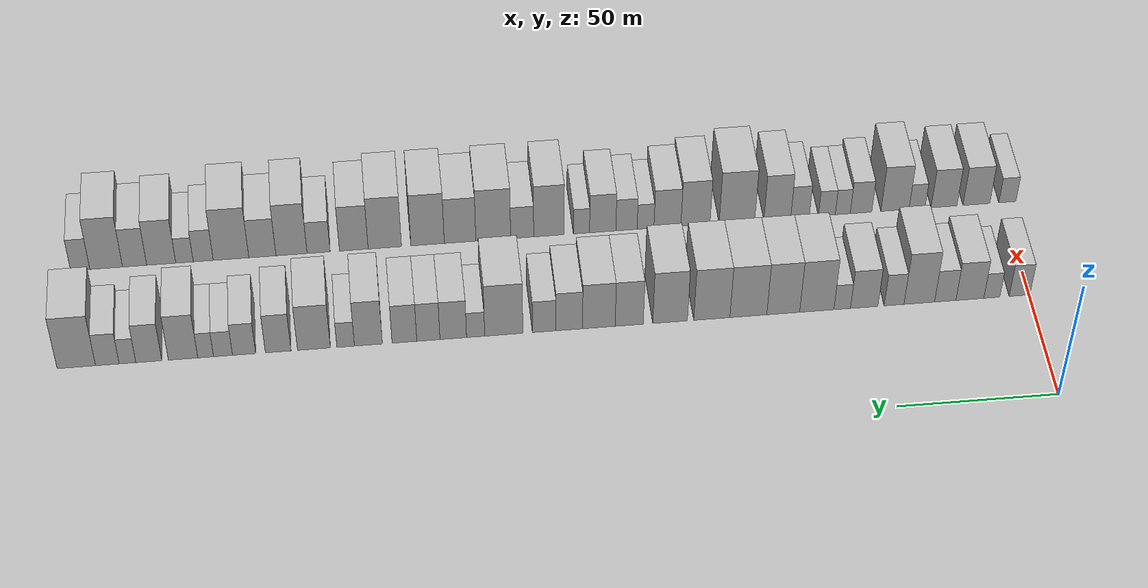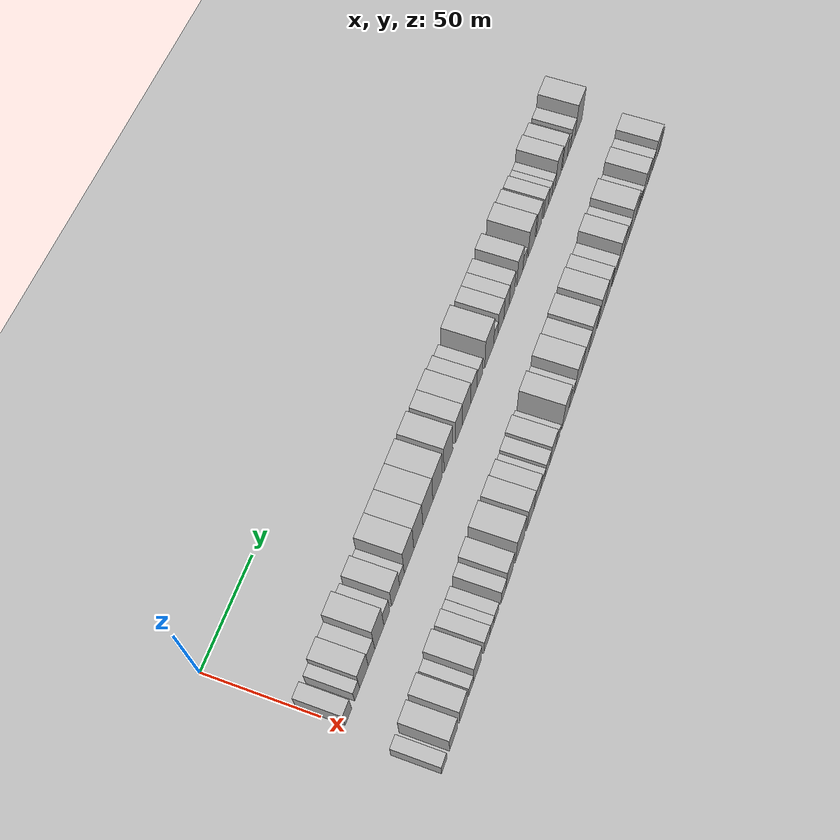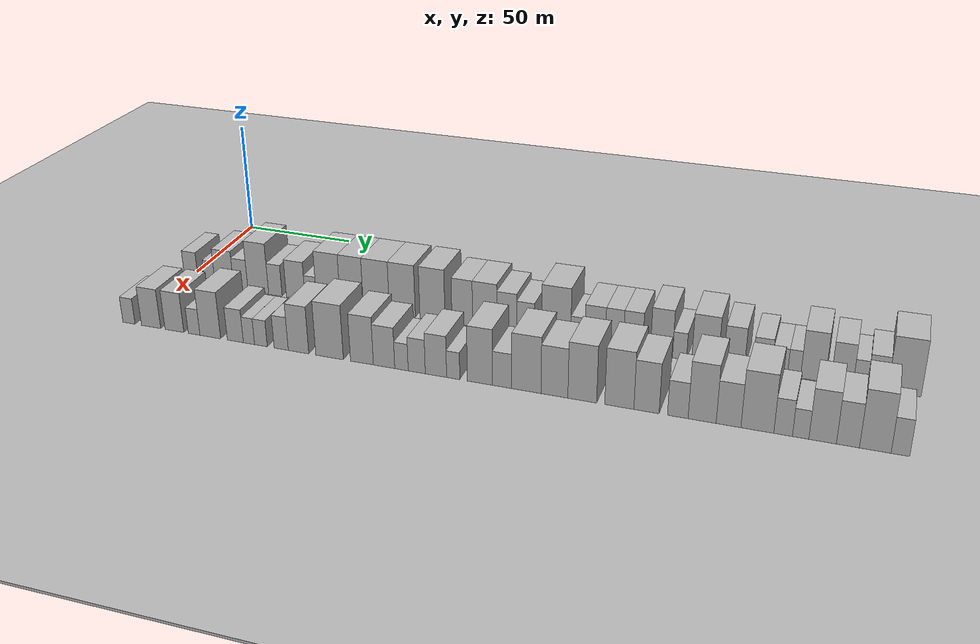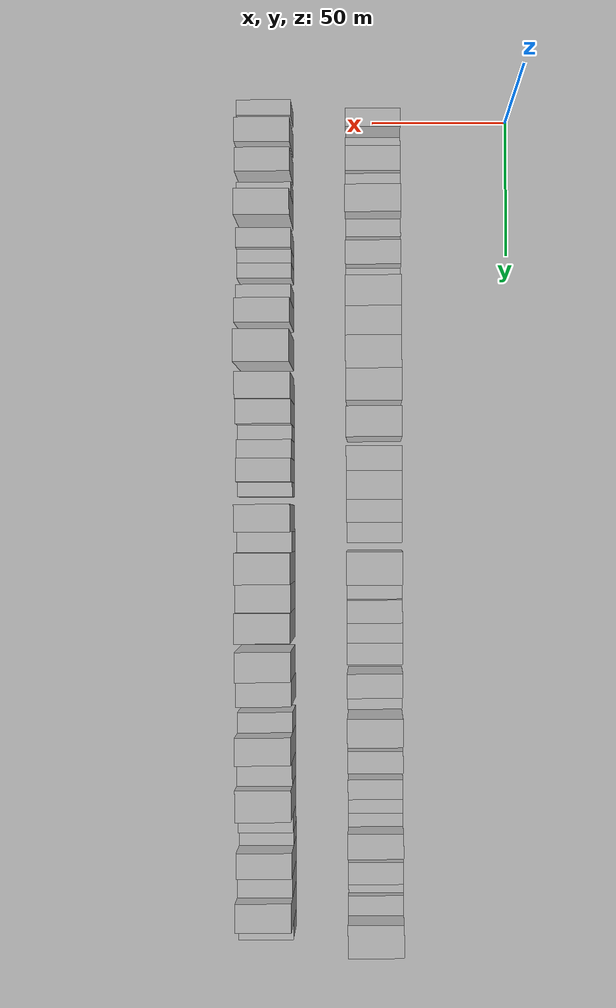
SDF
<sdf version="1.6">
 <world name="default">
  <include><name>ground_plane_1</name><uri>model://HANNAS_ground_plane</uri></include>
  <include>
   <name>ground_plane_2</name>
   <uri>model://HANNAS_ground_plane</uri>
   <pose>100 0 0  0 0 0</pose>
  </include>
  <model name="building_35">
   <static>1</static>
   <pose>50.0000 3.3389 0 0.000000 0.000000 0.000000</pose>
   <link name="link">
    <pose>0 0 7.50 0 0 0</pose>
    <collision name="collision"><geometry><box><size>20.0000 6.6458 15.0000</size></box></geometry></collision>
    <visual name="visual">
     <cast_shadows>0</cast_shadows>
     <geometry><box><size>20.0000 6.6458 15.0000</size></box></geometry>
     <material>
      <script>
       <uri>model://HANNAS_wall/materials/scripts</uri>
       <uri>model://HANNAS_wall/materials/textures</uri>
       <name>vrc/HANNAS_wall</name>
      </script>
     </material>
    </visual>
   </link>
  </model>
  <model name="building_36">
   <static>1</static>
   <pose>50.0000 12.2295 0 0.000000 0.000000 0.000000</pose>
   <link name="link">
    <pose>0 0 6.00 0 0 0</pose>
    <collision name="collision"><geometry><box><size>20.0000 5.1353 12.0000</size></box></geometry></collision>
    <visual name="visual">
     <cast_shadows>0</cast_shadows>
     <geometry><box><size>20.0000 5.1353 12.0000</size></box></geometry>
     <material>
      <script>
       <uri>model://HANNAS_wall/materials/scripts</uri>
       <uri>model://HANNAS_wall/materials/textures</uri>
       <name>vrc/HANNAS_wall</name>
      </script>
     </material>
    </visual>
   </link>
  </model>
  <model name="building_37">
   <static>1</static>
   <pose>50.0000 19.2701 0 0.000000 0.000000 0.000000</pose>
   <link name="link">
    <pose>0 0 9.00 0 0 0</pose>
    <collision name="collision"><geometry><box><size>20.0000 8.9459 18.0000</size></box></geometry></collision>
    <visual name="visual">
     <cast_shadows>0</cast_shadows>
     <geometry><box><size>20.0000 8.9459 18.0000</size></box></geometry>
     <material>
      <script>
       <uri>model://HANNAS_wall/materials/scripts</uri>
       <uri>model://HANNAS_wall/materials/textures</uri>
       <name>vrc/HANNAS_wall</name>
      </script>
     </material>
    </visual>
   </link>
  </model>
  <model name="building_38">
   <static>1</static>
   <pose>50.0000 27.1577 0 0.000000 0.000000 0.000000</pose>
   <link name="link">
    <pose>0 0 7.50 0 0 0</pose>
    <collision name="collision"><geometry><box><size>20.0000 6.8295 15.0000</size></box></geometry></collision>
    <visual name="visual">
     <cast_shadows>0</cast_shadows>
     <geometry><box><size>20.0000 6.8295 15.0000</size></box></geometry>
     <material>
      <script>
       <uri>model://HANNAS_wall/materials/scripts</uri>
       <uri>model://HANNAS_wall/materials/textures</uri>
       <name>vrc/HANNAS_wall</name>
      </script>
     </material>
    </visual>
   </link>
  </model>
  <model name="building_39">
   <static>1</static>
   <pose>50.0000 35.4678 0 0.000000 0.000000 0.000000</pose>
   <link name="link">
    <pose>0 0 12.00 0 0 0</pose>
    <collision name="collision"><geometry><box><size>20.0000 9.7906 24.0000</size></box></geometry></collision>
    <visual name="visual">
     <cast_shadows>0</cast_shadows>
     <geometry><box><size>20.0000 9.7906 24.0000</size></box></geometry>
     <material>
      <script>
       <uri>model://HANNAS_wall/materials/scripts</uri>
       <uri>model://HANNAS_wall/materials/textures</uri>
       <name>vrc/HANNAS_wall</name>
      </script>
     </material>
    </visual>
   </link>
  </model>
  <model name="building_40">
   <static>1</static>
   <pose>50.0000 43.5273 0 0.000000 0.000000 0.000000</pose>
   <link name="link">
    <pose>0 0 7.50 0 0 0</pose>
    <collision name="collision"><geometry><box><size>20.0000 6.3284 15.0000</size></box></geometry></collision>
    <visual name="visual">
     <cast_shadows>0</cast_shadows>
     <geometry><box><size>20.0000 6.3284 15.0000</size></box></geometry>
     <material>
      <script>
       <uri>model://HANNAS_wall/materials/scripts</uri>
       <uri>model://HANNAS_wall/materials/textures</uri>
       <name>vrc/HANNAS_wall</name>
      </script>
     </material>
    </visual>
   </link>
  </model>
  <model name="building_41">
   <static>1</static>
   <pose>50.0000 53.0629 0 0.000000 0.000000 0.000000</pose>
   <link name="link">
    <pose>0 0 9.00 0 0 0</pose>
    <collision name="collision"><geometry><box><size>20.0000 8.7427 18.0000</size></box></geometry></collision>
    <visual name="visual">
     <cast_shadows>0</cast_shadows>
     <geometry><box><size>20.0000 8.7427 18.0000</size></box></geometry>
     <material>
      <script>
       <uri>model://HANNAS_wall/materials/scripts</uri>
       <uri>model://HANNAS_wall/materials/textures</uri>
       <name>vrc/HANNAS_wall</name>
      </script>
     </material>
    </visual>
   </link>
  </model>
  <model name="building_42">
   <static>1</static>
   <pose>50.0000 60.0749 0 0.000000 0.000000 0.000000</pose>
   <link name="link">
    <pose>0 0 6.00 0 0 0</pose>
    <collision name="collision"><geometry><box><size>20.0000 5.2812 12.0000</size></box></geometry></collision>
    <visual name="visual">
     <cast_shadows>0</cast_shadows>
     <geometry><box><size>20.0000 5.2812 12.0000</size></box></geometry>
     <material>
      <script>
       <uri>model://HANNAS_wall/materials/scripts</uri>
       <uri>model://HANNAS_wall/materials/textures</uri>
       <name>vrc/HANNAS_wall</name>
      </script>
     </material>
    </visual>
   </link>
  </model>
  <model name="building_43">
   <static>1</static>
   <pose>50.0000 68.1646 0 0.000000 0.000000 0.000000</pose>
   <link name="link">
    <pose>0 0 12.00 0 0 0</pose>
    <collision name="collision"><geometry><box><size>20.0000 10.8982 24.0000</size></box></geometry></collision>
    <visual name="visual">
     <cast_shadows>0</cast_shadows>
     <geometry><box><size>20.0000 10.8982 24.0000</size></box></geometry>
     <material>
      <script>
       <uri>model://HANNAS_wall/materials/scripts</uri>
       <uri>model://HANNAS_wall/materials/textures</uri>
       <name>vrc/HANNAS_wall</name>
      </script>
     </material>
    </visual>
   </link>
  </model>
  <model name="building_44">
   <static>1</static>
   <pose>50.0000 78.8283 0 0.000000 0.000000 0.000000</pose>
   <link name="link">
    <pose>0 0 12.00 0 0 0</pose>
    <collision name="collision"><geometry><box><size>20.0000 10.4291 24.0000</size></box></geometry></collision>
    <visual name="visual">
     <cast_shadows>0</cast_shadows>
     <geometry><box><size>20.0000 10.4291 24.0000</size></box></geometry>
     <material>
      <script>
       <uri>model://HANNAS_wall/materials/scripts</uri>
       <uri>model://HANNAS_wall/materials/textures</uri>
       <name>vrc/HANNAS_wall</name>
      </script>
     </material>
    </visual>
   </link>
  </model>
  <model name="building_45">
   <static>1</static>
   <pose>50.0000 89.8818 0 0.000000 0.000000 0.000000</pose>
   <link name="link">
    <pose>0 0 12.00 0 0 0</pose>
    <collision name="collision"><geometry><box><size>20.0000 11.6781 24.0000</size></box></geometry></collision>
    <visual name="visual">
     <cast_shadows>0</cast_shadows>
     <geometry><box><size>20.0000 11.6781 24.0000</size></box></geometry>
     <material>
      <script>
       <uri>model://HANNAS_wall/materials/scripts</uri>
       <uri>model://HANNAS_wall/materials/textures</uri>
       <name>vrc/HANNAS_wall</name>
      </script>
     </material>
    </visual>
   </link>
  </model>
  <model name="building_46">
   <static>1</static>
   <pose>50.0000 101.4407 0 0.000000 0.000000 0.000000</pose>
   <link name="link">
    <pose>0 0 12.00 0 0 0</pose>
    <collision name="collision"><geometry><box><size>20.0000 11.4396 24.0000</size></box></geometry></collision>
    <visual name="visual">
     <cast_shadows>0</cast_shadows>
     <geometry><box><size>20.0000 11.4396 24.0000</size></box></geometry>
     <material>
      <script>
       <uri>model://HANNAS_wall/materials/scripts</uri>
       <uri>model://HANNAS_wall/materials/textures</uri>
       <name>vrc/HANNAS_wall</name>
      </script>
     </material>
    </visual>
   </link>
  </model>
  <model name="building_47">
   <static>1</static>
   <pose>50.0000 114.6288 0 0.000000 0.000000 0.000000</pose>
   <link name="link">
    <pose>0 0 12.00 0 0 0</pose>
    <collision name="collision"><geometry><box><size>20.0000 10.9366 24.0000</size></box></geometry></collision>
    <visual name="visual">
     <cast_shadows>0</cast_shadows>
     <geometry><box><size>20.0000 10.9366 24.0000</size></box></geometry>
     <material>
      <script>
       <uri>model://HANNAS_wall/materials/scripts</uri>
       <uri>model://HANNAS_wall/materials/textures</uri>
       <name>vrc/HANNAS_wall</name>
      </script>
     </material>
    </visual>
   </link>
  </model>
  <model name="building_48">
   <static>1</static>
   <pose>50.0000 127.5241 0 0.000000 0.000000 0.000000</pose>
   <link name="link">
    <pose>0 0 10.50 0 0 0</pose>
    <collision name="collision"><geometry><box><size>20.0000 8.8540 21.0000</size></box></geometry></collision>
    <visual name="visual">
     <cast_shadows>0</cast_shadows>
     <geometry><box><size>20.0000 8.8540 21.0000</size></box></geometry>
     <material>
      <script>
       <uri>model://HANNAS_wall/materials/scripts</uri>
       <uri>model://HANNAS_wall/materials/textures</uri>
       <name>vrc/HANNAS_wall</name>
      </script>
     </material>
    </visual>
   </link>
  </model>
  <model name="building_49">
   <static>1</static>
   <pose>50.0000 137.0890 0 0.000000 0.000000 0.000000</pose>
   <link name="link">
    <pose>0 0 10.50 0 0 0</pose>
    <collision name="collision"><geometry><box><size>20.0000 10.2759 21.0000</size></box></geometry></collision>
    <visual name="visual">
     <cast_shadows>0</cast_shadows>
     <geometry><box><size>20.0000 10.2759 21.0000</size></box></geometry>
     <material>
      <script>
       <uri>model://HANNAS_wall/materials/scripts</uri>
       <uri>model://HANNAS_wall/materials/textures</uri>
       <name>vrc/HANNAS_wall</name>
      </script>
     </material>
    </visual>
   </link>
  </model>
  <model name="building_50">
   <static>1</static>
   <pose>50.0000 146.3856 0 0.000000 0.000000 0.000000</pose>
   <link name="link">
    <pose>0 0 9.00 0 0 0</pose>
    <collision name="collision"><geometry><box><size>20.0000 8.3173 18.0000</size></box></geometry></collision>
    <visual name="visual">
     <cast_shadows>0</cast_shadows>
     <geometry><box><size>20.0000 8.3173 18.0000</size></box></geometry>
     <material>
      <script>
       <uri>model://HANNAS_wall/materials/scripts</uri>
       <uri>model://HANNAS_wall/materials/textures</uri>
       <name>vrc/HANNAS_wall</name>
      </script>
     </material>
    </visual>
   </link>
  </model>
  <model name="building_51">
   <static>1</static>
   <pose>50.0000 154.2314 0 0.000000 0.000000 0.000000</pose>
   <link name="link">
    <pose>0 0 7.50 0 0 0</pose>
    <collision name="collision"><geometry><box><size>20.0000 7.3743 15.0000</size></box></geometry></collision>
    <visual name="visual">
     <cast_shadows>0</cast_shadows>
     <geometry><box><size>20.0000 7.3743 15.0000</size></box></geometry>
     <material>
      <script>
       <uri>model://HANNAS_wall/materials/scripts</uri>
       <uri>model://HANNAS_wall/materials/textures</uri>
       <name>vrc/HANNAS_wall</name>
      </script>
     </material>
    </visual>
   </link>
  </model>
  <model name="building_52">
   <static>1</static>
   <pose>50.0000 166.8881 0 0.000000 0.000000 0.000000</pose>
   <link name="link">
    <pose>0 0 12.00 0 0 0</pose>
    <collision name="collision"><geometry><box><size>20.0000 11.9390 24.0000</size></box></geometry></collision>
    <visual name="visual">
     <cast_shadows>0</cast_shadows>
     <geometry><box><size>20.0000 11.9390 24.0000</size></box></geometry>
     <material>
      <script>
       <uri>model://HANNAS_wall/materials/scripts</uri>
       <uri>model://HANNAS_wall/materials/textures</uri>
       <name>vrc/HANNAS_wall</name>
      </script>
     </material>
    </visual>
   </link>
  </model>
  <model name="building_53">
   <static>1</static>
   <pose>50.0000 175.6898 0 0.000000 0.000000 0.000000</pose>
   <link name="link">
    <pose>0 0 6.00 0 0 0</pose>
    <collision name="collision"><geometry><box><size>20.0000 5.6643 12.0000</size></box></geometry></collision>
    <visual name="visual">
     <cast_shadows>0</cast_shadows>
     <geometry><box><size>20.0000 5.6643 12.0000</size></box></geometry>
     <material>
      <script>
       <uri>model://HANNAS_wall/materials/scripts</uri>
       <uri>model://HANNAS_wall/materials/textures</uri>
       <name>vrc/HANNAS_wall</name>
      </script>
     </material>
    </visual>
   </link>
  </model>
  <model name="building_54">
   <static>1</static>
   <pose>50.0000 182.6710 0 0.000000 0.000000 0.000000</pose>
   <link name="link">
    <pose>0 0 9.00 0 0 0</pose>
    <collision name="collision"><geometry><box><size>20.0000 8.2981 18.0000</size></box></geometry></collision>
    <visual name="visual">
     <cast_shadows>0</cast_shadows>
     <geometry><box><size>20.0000 8.2981 18.0000</size></box></geometry>
     <material>
      <script>
       <uri>model://HANNAS_wall/materials/scripts</uri>
       <uri>model://HANNAS_wall/materials/textures</uri>
       <name>vrc/HANNAS_wall</name>
      </script>
     </material>
    </visual>
   </link>
  </model>
  <model name="building_55">
   <static>1</static>
   <pose>50.0000 190.4304 0 0.000000 0.000000 0.000000</pose>
   <link name="link">
    <pose>0 0 9.00 0 0 0</pose>
    <collision name="collision"><geometry><box><size>20.0000 7.2208 18.0000</size></box></geometry></collision>
    <visual name="visual">
     <cast_shadows>0</cast_shadows>
     <geometry><box><size>20.0000 7.2208 18.0000</size></box></geometry>
     <material>
      <script>
       <uri>model://HANNAS_wall/materials/scripts</uri>
       <uri>model://HANNAS_wall/materials/textures</uri>
       <name>vrc/HANNAS_wall</name>
      </script>
     </material>
    </visual>
   </link>
  </model>
  <model name="building_56">
   <static>1</static>
   <pose>50.0000 197.8880 0 0.000000 0.000000 0.000000</pose>
   <link name="link">
    <pose>0 0 9.00 0 0 0</pose>
    <collision name="collision"><geometry><box><size>20.0000 7.6944 18.0000</size></box></geometry></collision>
    <visual name="visual">
     <cast_shadows>0</cast_shadows>
     <geometry><box><size>20.0000 7.6944 18.0000</size></box></geometry>
     <material>
      <script>
       <uri>model://HANNAS_wall/materials/scripts</uri>
       <uri>model://HANNAS_wall/materials/textures</uri>
       <name>vrc/HANNAS_wall</name>
      </script>
     </material>
    </visual>
   </link>
  </model>
  <model name="building_57">
   <static>1</static>
   <pose>50.0000 209.0783 0 0.000000 0.000000 0.000000</pose>
   <link name="link">
    <pose>0 0 10.50 0 0 0</pose>
    <collision name="collision"><geometry><box><size>20.0000 8.6862 21.0000</size></box></geometry></collision>
    <visual name="visual">
     <cast_shadows>0</cast_shadows>
     <geometry><box><size>20.0000 8.6862 21.0000</size></box></geometry>
     <material>
      <script>
       <uri>model://HANNAS_wall/materials/scripts</uri>
       <uri>model://HANNAS_wall/materials/textures</uri>
       <name>vrc/HANNAS_wall</name>
      </script>
     </material>
    </visual>
   </link>
  </model>
  <model name="building_58">
   <static>1</static>
   <pose>50.0000 216.1518 0 0.000000 0.000000 0.000000</pose>
   <link name="link">
    <pose>0 0 6.00 0 0 0</pose>
    <collision name="collision"><geometry><box><size>20.0000 5.4607 12.0000</size></box></geometry></collision>
    <visual name="visual">
     <cast_shadows>0</cast_shadows>
     <geometry><box><size>20.0000 5.4607 12.0000</size></box></geometry>
     <material>
      <script>
       <uri>model://HANNAS_wall/materials/scripts</uri>
       <uri>model://HANNAS_wall/materials/textures</uri>
       <name>vrc/HANNAS_wall</name>
      </script>
     </material>
    </visual>
   </link>
  </model>
  <model name="building_59">
   <static>1</static>
   <pose>50.0000 225.9751 0 0.000000 0.000000 0.000000</pose>
   <link name="link">
    <pose>0 0 10.50 0 0 0</pose>
    <collision name="collision"><geometry><box><size>20.0000 10.1858 21.0000</size></box></geometry></collision>
    <visual name="visual">
     <cast_shadows>0</cast_shadows>
     <geometry><box><size>20.0000 10.1858 21.0000</size></box></geometry>
     <material>
      <script>
       <uri>model://HANNAS_wall/materials/scripts</uri>
       <uri>model://HANNAS_wall/materials/textures</uri>
       <name>vrc/HANNAS_wall</name>
      </script>
     </material>
    </visual>
   </link>
  </model>
  <model name="building_60">
   <static>1</static>
   <pose>50.0000 237.0430 0 0.000000 0.000000 0.000000</pose>
   <link name="link">
    <pose>0 0 9.00 0 0 0</pose>
    <collision name="collision"><geometry><box><size>20.0000 7.9501 18.0000</size></box></geometry></collision>
    <visual name="visual">
     <cast_shadows>0</cast_shadows>
     <geometry><box><size>20.0000 7.9501 18.0000</size></box></geometry>
     <material>
      <script>
       <uri>model://HANNAS_wall/materials/scripts</uri>
       <uri>model://HANNAS_wall/materials/textures</uri>
       <name>vrc/HANNAS_wall</name>
      </script>
     </material>
    </visual>
   </link>
  </model>
  <model name="building_61">
   <static>1</static>
   <pose>50.0000 247.5973 0 0.000000 0.000000 0.000000</pose>
   <link name="link">
    <pose>0 0 7.50 0 0 0</pose>
    <collision name="collision"><geometry><box><size>20.0000 7.1584 15.0000</size></box></geometry></collision>
    <visual name="visual">
     <cast_shadows>0</cast_shadows>
     <geometry><box><size>20.0000 7.1584 15.0000</size></box></geometry>
     <material>
      <script>
       <uri>model://HANNAS_wall/materials/scripts</uri>
       <uri>model://HANNAS_wall/materials/textures</uri>
       <name>vrc/HANNAS_wall</name>
      </script>
     </material>
    </visual>
   </link>
  </model>
  <model name="building_62">
   <static>1</static>
   <pose>50.0000 254.1074 0 0.000000 0.000000 0.000000</pose>
   <link name="link">
    <pose>0 0 6.00 0 0 0</pose>
    <collision name="collision"><geometry><box><size>20.0000 5.8618 12.0000</size></box></geometry></collision>
    <visual name="visual">
     <cast_shadows>0</cast_shadows>
     <geometry><box><size>20.0000 5.8618 12.0000</size></box></geometry>
     <material>
      <script>
       <uri>model://HANNAS_wall/materials/scripts</uri>
       <uri>model://HANNAS_wall/materials/textures</uri>
       <name>vrc/HANNAS_wall</name>
      </script>
     </material>
    </visual>
   </link>
  </model>
  <model name="building_63">
   <static>1</static>
   <pose>50.0000 259.4556 0 0.000000 0.000000 0.000000</pose>
   <link name="link">
    <pose>0 0 6.00 0 0 0</pose>
    <collision name="collision"><geometry><box><size>20.0000 4.8348 12.0000</size></box></geometry></collision>
    <visual name="visual">
     <cast_shadows>0</cast_shadows>
     <geometry><box><size>20.0000 4.8348 12.0000</size></box></geometry>
     <material>
      <script>
       <uri>model://HANNAS_wall/materials/scripts</uri>
       <uri>model://HANNAS_wall/materials/textures</uri>
       <name>vrc/HANNAS_wall</name>
      </script>
     </material>
    </visual>
   </link>
  </model>
  <model name="building_64">
   <static>1</static>
   <pose>50.0000 266.3942 0 0.000000 0.000000 0.000000</pose>
   <link name="link">
    <pose>0 0 10.50 0 0 0</pose>
    <collision name="collision"><geometry><box><size>20.0000 9.0425 21.0000</size></box></geometry></collision>
    <visual name="visual">
     <cast_shadows>0</cast_shadows>
     <geometry><box><size>20.0000 9.0425 21.0000</size></box></geometry>
     <material>
      <script>
       <uri>model://HANNAS_wall/materials/scripts</uri>
       <uri>model://HANNAS_wall/materials/textures</uri>
       <name>vrc/HANNAS_wall</name>
      </script>
     </material>
    </visual>
   </link>
  </model>
  <model name="building_65">
   <static>1</static>
   <pose>50.0000 276.9213 0 0.000000 0.000000 0.000000</pose>
   <link name="link">
    <pose>0 0 9.00 0 0 0</pose>
    <collision name="collision"><geometry><box><size>20.0000 8.0116 18.0000</size></box></geometry></collision>
    <visual name="visual">
     <cast_shadows>0</cast_shadows>
     <geometry><box><size>20.0000 8.0116 18.0000</size></box></geometry>
     <material>
      <script>
       <uri>model://HANNAS_wall/materials/scripts</uri>
       <uri>model://HANNAS_wall/materials/textures</uri>
       <name>vrc/HANNAS_wall</name>
      </script>
     </material>
    </visual>
   </link>
  </model>
  <model name="building_66">
   <static>1</static>
   <pose>50.0000 283.4833 0 0.000000 0.000000 0.000000</pose>
   <link name="link">
    <pose>0 0 6.00 0 0 0</pose>
    <collision name="collision"><geometry><box><size>20.0000 5.1124 12.0000</size></box></geometry></collision>
    <visual name="visual">
     <cast_shadows>0</cast_shadows>
     <geometry><box><size>20.0000 5.1124 12.0000</size></box></geometry>
     <material>
      <script>
       <uri>model://HANNAS_wall/materials/scripts</uri>
       <uri>model://HANNAS_wall/materials/textures</uri>
       <name>vrc/HANNAS_wall</name>
      </script>
     </material>
    </visual>
   </link>
  </model>
  <model name="building_67">
   <static>1</static>
   <pose>50.0000 289.6551 0 0.000000 0.000000 0.000000</pose>
   <link name="link">
    <pose>0 0 7.50 0 0 0</pose>
    <collision name="collision"><geometry><box><size>20.0000 7.2311 15.0000</size></box></geometry></collision>
    <visual name="visual">
     <cast_shadows>0</cast_shadows>
     <geometry><box><size>20.0000 7.2311 15.0000</size></box></geometry>
     <material>
      <script>
       <uri>model://HANNAS_wall/materials/scripts</uri>
       <uri>model://HANNAS_wall/materials/textures</uri>
       <name>vrc/HANNAS_wall</name>
      </script>
     </material>
    </visual>
   </link>
  </model>
  <model name="building_68">
   <static>1</static>
   <pose>50.0000 299.1530 0 0.000000 0.000000 0.000000</pose>
   <link name="link">
    <pose>0 0 12.00 0 0 0</pose>
    <collision name="collision"><geometry><box><size>20.0000 11.7646 24.0000</size></box></geometry></collision>
    <visual name="visual">
     <cast_shadows>0</cast_shadows>
     <geometry><box><size>20.0000 11.7646 24.0000</size></box></geometry>
     <material>
      <script>
       <uri>model://HANNAS_wall/materials/scripts</uri>
       <uri>model://HANNAS_wall/materials/textures</uri>
       <name>vrc/HANNAS_wall</name>
      </script>
     </material>
    </visual>
   </link>
  </model>
  <model name="building_103">
   <static>1</static>
   <pose>90.0000 -1.5841 0 0.000000 0.000000 0.000000</pose>
   <link name="link">
    <pose>0 0 6.00 0 0 0</pose>
    <collision name="collision"><geometry><box><size>20.0000 5.6507 12.0000</size></box></geometry></collision>
    <visual name="visual">
     <cast_shadows>0</cast_shadows>
     <geometry><box><size>20.0000 5.6507 12.0000</size></box></geometry>
     <material>
      <script>
       <uri>model://HANNAS_wall/materials/scripts</uri>
       <uri>model://HANNAS_wall/materials/textures</uri>
       <name>vrc/HANNAS_wall</name>
      </script>
     </material>
    </visual>
   </link>
  </model>
  <model name="building_104">
   <static>1</static>
   <pose>90.0000 8.6840 0 0.000000 0.000000 0.000000</pose>
   <link name="link">
    <pose>0 0 9.00 0 0 0</pose>
    <collision name="collision"><geometry><box><size>20.0000 8.8856 18.0000</size></box></geometry></collision>
    <visual name="visual">
     <cast_shadows>0</cast_shadows>
     <geometry><box><size>20.0000 8.8856 18.0000</size></box></geometry>
     <material>
      <script>
       <uri>model://HANNAS_wall/materials/scripts</uri>
       <uri>model://HANNAS_wall/materials/textures</uri>
       <name>vrc/HANNAS_wall</name>
      </script>
     </material>
    </visual>
   </link>
  </model>
  <model name="building_105">
   <static>1</static>
   <pose>90.0000 19.4103 0 0.000000 0.000000 0.000000</pose>
   <link name="link">
    <pose>0 0 9.00 0 0 0</pose>
    <collision name="collision"><geometry><box><size>20.0000 8.5669 18.0000</size></box></geometry></collision>
    <visual name="visual">
     <cast_shadows>0</cast_shadows>
     <geometry><box><size>20.0000 8.5669 18.0000</size></box></geometry>
     <material>
      <script>
       <uri>model://HANNAS_wall/materials/scripts</uri>
       <uri>model://HANNAS_wall/materials/textures</uri>
       <name>vrc/HANNAS_wall</name>
      </script>
     </material>
    </visual>
   </link>
  </model>
  <model name="building_106">
   <static>1</static>
   <pose>90.0000 28.3359 0 0.000000 0.000000 0.000000</pose>
   <link name="link">
    <pose>0 0 6.00 0 0 0</pose>
    <collision name="collision"><geometry><box><size>20.0000 5.2843 12.0000</size></box></geometry></collision>
    <visual name="visual">
     <cast_shadows>0</cast_shadows>
     <geometry><box><size>20.0000 5.2843 12.0000</size></box></geometry>
     <material>
      <script>
       <uri>model://HANNAS_wall/materials/scripts</uri>
       <uri>model://HANNAS_wall/materials/textures</uri>
       <name>vrc/HANNAS_wall</name>
      </script>
     </material>
    </visual>
   </link>
  </model>
  <model name="building_107">
   <static>1</static>
   <pose>90.0000 35.6251 0 0.000000 0.000000 0.000000</pose>
   <link name="link">
    <pose>0 0 10.50 0 0 0</pose>
    <collision name="collision"><geometry><box><size>20.0000 9.2941 21.0000</size></box></geometry></collision>
    <visual name="visual">
     <cast_shadows>0</cast_shadows>
     <geometry><box><size>20.0000 9.2941 21.0000</size></box></geometry>
     <material>
      <script>
       <uri>model://HANNAS_wall/materials/scripts</uri>
       <uri>model://HANNAS_wall/materials/textures</uri>
       <name>vrc/HANNAS_wall</name>
      </script>
     </material>
    </visual>
   </link>
  </model>
  <model name="building_108">
   <static>1</static>
   <pose>90.0000 46.8183 0 0.000000 0.000000 0.000000</pose>
   <link name="link">
    <pose>0 0 7.50 0 0 0</pose>
    <collision name="collision"><geometry><box><size>20.0000 7.0922 15.0000</size></box></geometry></collision>
    <visual name="visual">
     <cast_shadows>0</cast_shadows>
     <geometry><box><size>20.0000 7.0922 15.0000</size></box></geometry>
     <material>
      <script>
       <uri>model://HANNAS_wall/materials/scripts</uri>
       <uri>model://HANNAS_wall/materials/textures</uri>
       <name>vrc/HANNAS_wall</name>
      </script>
     </material>
    </visual>
   </link>
  </model>
  <model name="building_109">
   <static>1</static>
   <pose>90.0000 52.8250 0 0.000000 0.000000 0.000000</pose>
   <link name="link">
    <pose>0 0 6.00 0 0 0</pose>
    <collision name="collision"><geometry><box><size>20.0000 4.9211 12.0000</size></box></geometry></collision>
    <visual name="visual">
     <cast_shadows>0</cast_shadows>
     <geometry><box><size>20.0000 4.9211 12.0000</size></box></geometry>
     <material>
      <script>
       <uri>model://HANNAS_wall/materials/scripts</uri>
       <uri>model://HANNAS_wall/materials/textures</uri>
       <name>vrc/HANNAS_wall</name>
      </script>
     </material>
    </visual>
   </link>
  </model>
  <model name="building_110">
   <static>1</static>
   <pose>90.0000 58.0600 0 0.000000 0.000000 0.000000</pose>
   <link name="link">
    <pose>0 0 6.00 0 0 0</pose>
    <collision name="collision"><geometry><box><size>20.0000 5.5488 12.0000</size></box></geometry></collision>
    <visual name="visual">
     <cast_shadows>0</cast_shadows>
     <geometry><box><size>20.0000 5.5488 12.0000</size></box></geometry>
     <material>
      <script>
       <uri>model://HANNAS_wall/materials/scripts</uri>
       <uri>model://HANNAS_wall/materials/textures</uri>
       <name>vrc/HANNAS_wall</name>
      </script>
     </material>
    </visual>
   </link>
  </model>
  <model name="building_111">
   <static>1</static>
   <pose>90.0000 66.8899 0 0.000000 0.000000 0.000000</pose>
   <link name="link">
    <pose>0 0 7.50 0 0 0</pose>
    <collision name="collision"><geometry><box><size>20.0000 6.1112 15.0000</size></box></geometry></collision>
    <visual name="visual">
     <cast_shadows>0</cast_shadows>
     <geometry><box><size>20.0000 6.1112 15.0000</size></box></geometry>
     <material>
      <script>
       <uri>model://HANNAS_wall/materials/scripts</uri>
       <uri>model://HANNAS_wall/materials/textures</uri>
       <name>vrc/HANNAS_wall</name>
      </script>
     </material>
    </visual>
   </link>
  </model>
  <model name="building_112">
   <static>1</static>
   <pose>90.0000 74.3477 0 0.000000 0.000000 0.000000</pose>
   <link name="link">
    <pose>0 0 10.50 0 0 0</pose>
    <collision name="collision"><geometry><box><size>20.0000 8.8043 21.0000</size></box></geometry></collision>
    <visual name="visual">
     <cast_shadows>0</cast_shadows>
     <geometry><box><size>20.0000 8.8043 21.0000</size></box></geometry>
     <material>
      <script>
       <uri>model://HANNAS_wall/materials/scripts</uri>
       <uri>model://HANNAS_wall/materials/textures</uri>
       <name>vrc/HANNAS_wall</name>
      </script>
     </material>
    </visual>
   </link>
  </model>
  <model name="building_113">
   <static>1</static>
   <pose>90.0000 87.5707 0 0.000000 0.000000 0.000000</pose>
   <link name="link">
    <pose>0 0 12.00 0 0 0</pose>
    <collision name="collision"><geometry><box><size>20.0000 11.6418 24.0000</size></box></geometry></collision>
    <visual name="visual">
     <cast_shadows>0</cast_shadows>
     <geometry><box><size>20.0000 11.6418 24.0000</size></box></geometry>
     <material>
      <script>
       <uri>model://HANNAS_wall/materials/scripts</uri>
       <uri>model://HANNAS_wall/materials/textures</uri>
       <name>vrc/HANNAS_wall</name>
      </script>
     </material>
    </visual>
   </link>
  </model>
  <model name="building_114">
   <static>1</static>
   <pose>90.0000 101.1478 0 0.000000 0.000000 0.000000</pose>
   <link name="link">
    <pose>0 0 10.50 0 0 0</pose>
    <collision name="collision"><geometry><box><size>20.0000 9.5124 21.0000</size></box></geometry></collision>
    <visual name="visual">
     <cast_shadows>0</cast_shadows>
     <geometry><box><size>20.0000 9.5124 21.0000</size></box></geometry>
     <material>
      <script>
       <uri>model://HANNAS_wall/materials/scripts</uri>
       <uri>model://HANNAS_wall/materials/textures</uri>
       <name>vrc/HANNAS_wall</name>
      </script>
     </material>
    </visual>
   </link>
  </model>
  <model name="building_115">
   <static>1</static>
   <pose>90.0000 110.2973 0 0.000000 0.000000 0.000000</pose>
   <link name="link">
    <pose>0 0 9.00 0 0 0</pose>
    <collision name="collision"><geometry><box><size>20.0000 8.7867 18.0000</size></box></geometry></collision>
    <visual name="visual">
     <cast_shadows>0</cast_shadows>
     <geometry><box><size>20.0000 8.7867 18.0000</size></box></geometry>
     <material>
      <script>
       <uri>model://HANNAS_wall/materials/scripts</uri>
       <uri>model://HANNAS_wall/materials/textures</uri>
       <name>vrc/HANNAS_wall</name>
      </script>
     </material>
    </visual>
   </link>
  </model>
  <model name="building_116">
   <static>1</static>
   <pose>90.0000 117.4293 0 0.000000 0.000000 0.000000</pose>
   <link name="link">
    <pose>0 0 6.00 0 0 0</pose>
    <collision name="collision"><geometry><box><size>20.0000 5.4772 12.0000</size></box></geometry></collision>
    <visual name="visual">
     <cast_shadows>0</cast_shadows>
     <geometry><box><size>20.0000 5.4772 12.0000</size></box></geometry>
     <material>
      <script>
       <uri>model://HANNAS_wall/materials/scripts</uri>
       <uri>model://HANNAS_wall/materials/textures</uri>
       <name>vrc/HANNAS_wall</name>
      </script>
     </material>
    </visual>
   </link>
  </model>
  <model name="building_117">
   <static>1</static>
   <pose>90.0000 123.6310 0 0.000000 0.000000 0.000000</pose>
   <link name="link">
    <pose>0 0 7.50 0 0 0</pose>
    <collision name="collision"><geometry><box><size>20.0000 6.9262 15.0000</size></box></geometry></collision>
    <visual name="visual">
     <cast_shadows>0</cast_shadows>
     <geometry><box><size>20.0000 6.9262 15.0000</size></box></geometry>
     <material>
      <script>
       <uri>model://HANNAS_wall/materials/scripts</uri>
       <uri>model://HANNAS_wall/materials/textures</uri>
       <name>vrc/HANNAS_wall</name>
      </script>
     </material>
    </visual>
   </link>
  </model>
  <model name="building_118">
   <static>1</static>
   <pose>90.0000 131.3667 0 0.000000 0.000000 0.000000</pose>
   <link name="link">
    <pose>0 0 9.00 0 0 0</pose>
    <collision name="collision"><geometry><box><size>20.0000 8.5453 18.0000</size></box></geometry></collision>
    <visual name="visual">
     <cast_shadows>0</cast_shadows>
     <geometry><box><size>20.0000 8.5453 18.0000</size></box></geometry>
     <material>
      <script>
       <uri>model://HANNAS_wall/materials/scripts</uri>
       <uri>model://HANNAS_wall/materials/textures</uri>
       <name>vrc/HANNAS_wall</name>
      </script>
     </material>
    </visual>
   </link>
  </model>
  <model name="building_119">
   <static>1</static>
   <pose>90.0000 138.2648 0 0.000000 0.000000 0.000000</pose>
   <link name="link">
    <pose>0 0 6.00 0 0 0</pose>
    <collision name="collision"><geometry><box><size>20.0000 5.2509 12.0000</size></box></geometry></collision>
    <visual name="visual">
     <cast_shadows>0</cast_shadows>
     <geometry><box><size>20.0000 5.2509 12.0000</size></box></geometry>
     <material>
      <script>
       <uri>model://HANNAS_wall/materials/scripts</uri>
       <uri>model://HANNAS_wall/materials/textures</uri>
       <name>vrc/HANNAS_wall</name>
      </script>
     </material>
    </visual>
   </link>
  </model>
  <model name="building_120">
   <static>1</static>
   <pose>90.0000 148.8234 0 0.000000 0.000000 0.000000</pose>
   <link name="link">
    <pose>0 0 12.00 0 0 0</pose>
    <collision name="collision"><geometry><box><size>20.0000 9.8663 24.0000</size></box></geometry></collision>
    <visual name="visual">
     <cast_shadows>0</cast_shadows>
     <geometry><box><size>20.0000 9.8663 24.0000</size></box></geometry>
     <material>
      <script>
       <uri>model://HANNAS_wall/materials/scripts</uri>
       <uri>model://HANNAS_wall/materials/textures</uri>
       <name>vrc/HANNAS_wall</name>
      </script>
     </material>
    </visual>
   </link>
  </model>
  <model name="building_121">
   <static>1</static>
   <pose>90.0000 157.4931 0 0.000000 0.000000 0.000000</pose>
   <link name="link">
    <pose>0 0 7.50 0 0 0</pose>
    <collision name="collision"><geometry><box><size>20.0000 7.4730 15.0000</size></box></geometry></collision>
    <visual name="visual">
     <cast_shadows>0</cast_shadows>
     <geometry><box><size>20.0000 7.4730 15.0000</size></box></geometry>
     <material>
      <script>
       <uri>model://HANNAS_wall/materials/scripts</uri>
       <uri>model://HANNAS_wall/materials/textures</uri>
       <name>vrc/HANNAS_wall</name>
      </script>
     </material>
    </visual>
   </link>
  </model>
  <model name="building_122">
   <static>1</static>
   <pose>90.0000 166.8504 0 0.000000 0.000000 0.000000</pose>
   <link name="link">
    <pose>0 0 12.00 0 0 0</pose>
    <collision name="collision"><geometry><box><size>20.0000 11.2417 24.0000</size></box></geometry></collision>
    <visual name="visual">
     <cast_shadows>0</cast_shadows>
     <geometry><box><size>20.0000 11.2417 24.0000</size></box></geometry>
     <material>
      <script>
       <uri>model://HANNAS_wall/materials/scripts</uri>
       <uri>model://HANNAS_wall/materials/textures</uri>
       <name>vrc/HANNAS_wall</name>
      </script>
     </material>
    </visual>
   </link>
  </model>
  <model name="building_123">
   <static>1</static>
   <pose>90.0000 177.5619 0 0.000000 0.000000 0.000000</pose>
   <link name="link">
    <pose>0 0 10.50 0 0 0</pose>
    <collision name="collision"><geometry><box><size>20.0000 10.1813 21.0000</size></box></geometry></collision>
    <visual name="visual">
     <cast_shadows>0</cast_shadows>
     <geometry><box><size>20.0000 10.1813 21.0000</size></box></geometry>
     <material>
      <script>
       <uri>model://HANNAS_wall/materials/scripts</uri>
       <uri>model://HANNAS_wall/materials/textures</uri>
       <name>vrc/HANNAS_wall</name>
      </script>
     </material>
    </visual>
   </link>
  </model>
  <model name="building_124">
   <static>1</static>
   <pose>90.0000 188.0371 0 0.000000 0.000000 0.000000</pose>
   <link name="link">
    <pose>0 0 12.00 0 0 0</pose>
    <collision name="collision"><geometry><box><size>20.0000 10.7690 24.0000</size></box></geometry></collision>
    <visual name="visual">
     <cast_shadows>0</cast_shadows>
     <geometry><box><size>20.0000 10.7690 24.0000</size></box></geometry>
     <material>
      <script>
       <uri>model://HANNAS_wall/materials/scripts</uri>
       <uri>model://HANNAS_wall/materials/textures</uri>
       <name>vrc/HANNAS_wall</name>
      </script>
     </material>
    </visual>
   </link>
  </model>
  <model name="building_125">
   <static>1</static>
   <pose>90.0000 201.7819 0 0.000000 0.000000 0.000000</pose>
   <link name="link">
    <pose>0 0 12.00 0 0 0</pose>
    <collision name="collision"><geometry><box><size>20.0000 10.7206 24.0000</size></box></geometry></collision>
    <visual name="visual">
     <cast_shadows>0</cast_shadows>
     <geometry><box><size>20.0000 10.7206 24.0000</size></box></geometry>
     <material>
      <script>
       <uri>model://HANNAS_wall/materials/scripts</uri>
       <uri>model://HANNAS_wall/materials/textures</uri>
       <name>vrc/HANNAS_wall</name>
      </script>
     </material>
    </visual>
   </link>
  </model>
  <model name="building_126">
   <static>1</static>
   <pose>90.0000 211.7408 0 0.000000 0.000000 0.000000</pose>
   <link name="link">
    <pose>0 0 10.50 0 0 0</pose>
    <collision name="collision"><geometry><box><size>20.0000 9.1972 21.0000</size></box></geometry></collision>
    <visual name="visual">
     <cast_shadows>0</cast_shadows>
     <geometry><box><size>20.0000 9.1972 21.0000</size></box></geometry>
     <material>
      <script>
       <uri>model://HANNAS_wall/materials/scripts</uri>
       <uri>model://HANNAS_wall/materials/textures</uri>
       <name>vrc/HANNAS_wall</name>
      </script>
     </material>
    </visual>
   </link>
  </model>
  <model name="building_127">
   <static>1</static>
   <pose>90.0000 223.0304 0 0.000000 0.000000 0.000000</pose>
   <link name="link">
    <pose>0 0 7.50 0 0 0</pose>
    <collision name="collision"><geometry><box><size>20.0000 7.3820 15.0000</size></box></geometry></collision>
    <visual name="visual">
     <cast_shadows>0</cast_shadows>
     <geometry><box><size>20.0000 7.3820 15.0000</size></box></geometry>
     <material>
      <script>
       <uri>model://HANNAS_wall/materials/scripts</uri>
       <uri>model://HANNAS_wall/materials/textures</uri>
       <name>vrc/HANNAS_wall</name>
      </script>
     </material>
    </visual>
   </link>
  </model>
  <model name="building_128">
   <static>1</static>
   <pose>90.0000 231.6953 0 0.000000 0.000000 0.000000</pose>
   <link name="link">
    <pose>0 0 12.00 0 0 0</pose>
    <collision name="collision"><geometry><box><size>20.0000 9.9478 24.0000</size></box></geometry></collision>
    <visual name="visual">
     <cast_shadows>0</cast_shadows>
     <geometry><box><size>20.0000 9.9478 24.0000</size></box></geometry>
     <material>
      <script>
       <uri>model://HANNAS_wall/materials/scripts</uri>
       <uri>model://HANNAS_wall/materials/textures</uri>
       <name>vrc/HANNAS_wall</name>
      </script>
     </material>
    </visual>
   </link>
  </model>
  <model name="building_129">
   <static>1</static>
   <pose>90.0000 241.0074 0 0.000000 0.000000 0.000000</pose>
   <link name="link">
    <pose>0 0 9.00 0 0 0</pose>
    <collision name="collision"><geometry><box><size>20.0000 8.6763 18.0000</size></box></geometry></collision>
    <visual name="visual">
     <cast_shadows>0</cast_shadows>
     <geometry><box><size>20.0000 8.6763 18.0000</size></box></geometry>
     <material>
      <script>
       <uri>model://HANNAS_wall/materials/scripts</uri>
       <uri>model://HANNAS_wall/materials/textures</uri>
       <name>vrc/HANNAS_wall</name>
      </script>
     </material>
    </visual>
   </link>
  </model>
  <model name="building_130">
   <static>1</static>
   <pose>90.0000 251.0252 0 0.000000 0.000000 0.000000</pose>
   <link name="link">
    <pose>0 0 12.00 0 0 0</pose>
    <collision name="collision"><geometry><box><size>20.0000 11.3591 24.0000</size></box></geometry></collision>
    <visual name="visual">
     <cast_shadows>0</cast_shadows>
     <geometry><box><size>20.0000 11.3591 24.0000</size></box></geometry>
     <material>
      <script>
       <uri>model://HANNAS_wall/materials/scripts</uri>
       <uri>model://HANNAS_wall/materials/textures</uri>
       <name>vrc/HANNAS_wall</name>
      </script>
     </material>
    </visual>
   </link>
  </model>
  <model name="building_131">
   <static>1</static>
   <pose>90.0000 259.8909 0 0.000000 0.000000 0.000000</pose>
   <link name="link">
    <pose>0 0 7.50 0 0 0</pose>
    <collision name="collision"><geometry><box><size>20.0000 6.3723 15.0000</size></box></geometry></collision>
    <visual name="visual">
     <cast_shadows>0</cast_shadows>
     <geometry><box><size>20.0000 6.3723 15.0000</size></box></geometry>
     <material>
      <script>
       <uri>model://HANNAS_wall/materials/scripts</uri>
       <uri>model://HANNAS_wall/materials/textures</uri>
       <name>vrc/HANNAS_wall</name>
      </script>
     </material>
    </visual>
   </link>
  </model>
  <model name="building_132">
   <static>1</static>
   <pose>90.0000 265.8568 0 0.000000 0.000000 0.000000</pose>
   <link name="link">
    <pose>0 0 6.00 0 0 0</pose>
    <collision name="collision"><geometry><box><size>20.0000 5.5596 12.0000</size></box></geometry></collision>
    <visual name="visual">
     <cast_shadows>0</cast_shadows>
     <geometry><box><size>20.0000 5.5596 12.0000</size></box></geometry>
     <material>
      <script>
       <uri>model://HANNAS_wall/materials/scripts</uri>
       <uri>model://HANNAS_wall/materials/textures</uri>
       <name>vrc/HANNAS_wall</name>
      </script>
     </material>
    </visual>
   </link>
  </model>
  <model name="building_133">
   <static>1</static>
   <pose>90.0000 273.2540 0 0.000000 0.000000 0.000000</pose>
   <link name="link">
    <pose>0 0 10.50 0 0 0</pose>
    <collision name="collision"><geometry><box><size>20.0000 9.2349 21.0000</size></box></geometry></collision>
    <visual name="visual">
     <cast_shadows>0</cast_shadows>
     <geometry><box><size>20.0000 9.2349 21.0000</size></box></geometry>
     <material>
      <script>
       <uri>model://HANNAS_wall/materials/scripts</uri>
       <uri>model://HANNAS_wall/materials/textures</uri>
       <name>vrc/HANNAS_wall</name>
      </script>
     </material>
    </visual>
   </link>
  </model>
  <model name="building_134">
   <static>1</static>
   <pose>90.0000 281.6991 0 0.000000 0.000000 0.000000</pose>
   <link name="link">
    <pose>0 0 9.00 0 0 0</pose>
    <collision name="collision"><geometry><box><size>20.0000 7.6553 18.0000</size></box></geometry></collision>
    <visual name="visual">
     <cast_shadows>0</cast_shadows>
     <geometry><box><size>20.0000 7.6553 18.0000</size></box></geometry>
     <material>
      <script>
       <uri>model://HANNAS_wall/materials/scripts</uri>
       <uri>model://HANNAS_wall/materials/textures</uri>
       <name>vrc/HANNAS_wall</name>
      </script>
     </material>
    </visual>
   </link>
  </model>
  <model name="building_135">
   <static>1</static>
   <pose>90.0000 290.7181 0 0.000000 0.000000 0.000000</pose>
   <link name="link">
    <pose>0 0 12.00 0 0 0</pose>
    <collision name="collision"><geometry><box><size>20.0000 10.3826 24.0000</size></box></geometry></collision>
    <visual name="visual">
     <cast_shadows>0</cast_shadows>
     <geometry><box><size>20.0000 10.3826 24.0000</size></box></geometry>
     <material>
      <script>
       <uri>model://HANNAS_wall/materials/scripts</uri>
       <uri>model://HANNAS_wall/materials/textures</uri>
       <name>vrc/HANNAS_wall</name>
      </script>
     </material>
    </visual>
   </link>
  </model>
  <model name="building_136">
   <static>1</static>
   <pose>90.0000 298.9463 0 0.000000 0.000000 0.000000</pose>
   <link name="link">
    <pose>0 0 7.50 0 0 0</pose>
    <collision name="collision"><geometry><box><size>20.0000 6.0738 15.0000</size></box></geometry></collision>
    <visual name="visual">
     <cast_shadows>0</cast_shadows>
     <geometry><box><size>20.0000 6.0738 15.0000</size></box></geometry>
     <material>
      <script>
       <uri>model://HANNAS_wall/materials/scripts</uri>
       <uri>model://HANNAS_wall/materials/textures</uri>
       <name>vrc/HANNAS_wall</name>
      </script>
     </material>
    </visual>
   </link>
  </model>
 </world>
</sdf>
